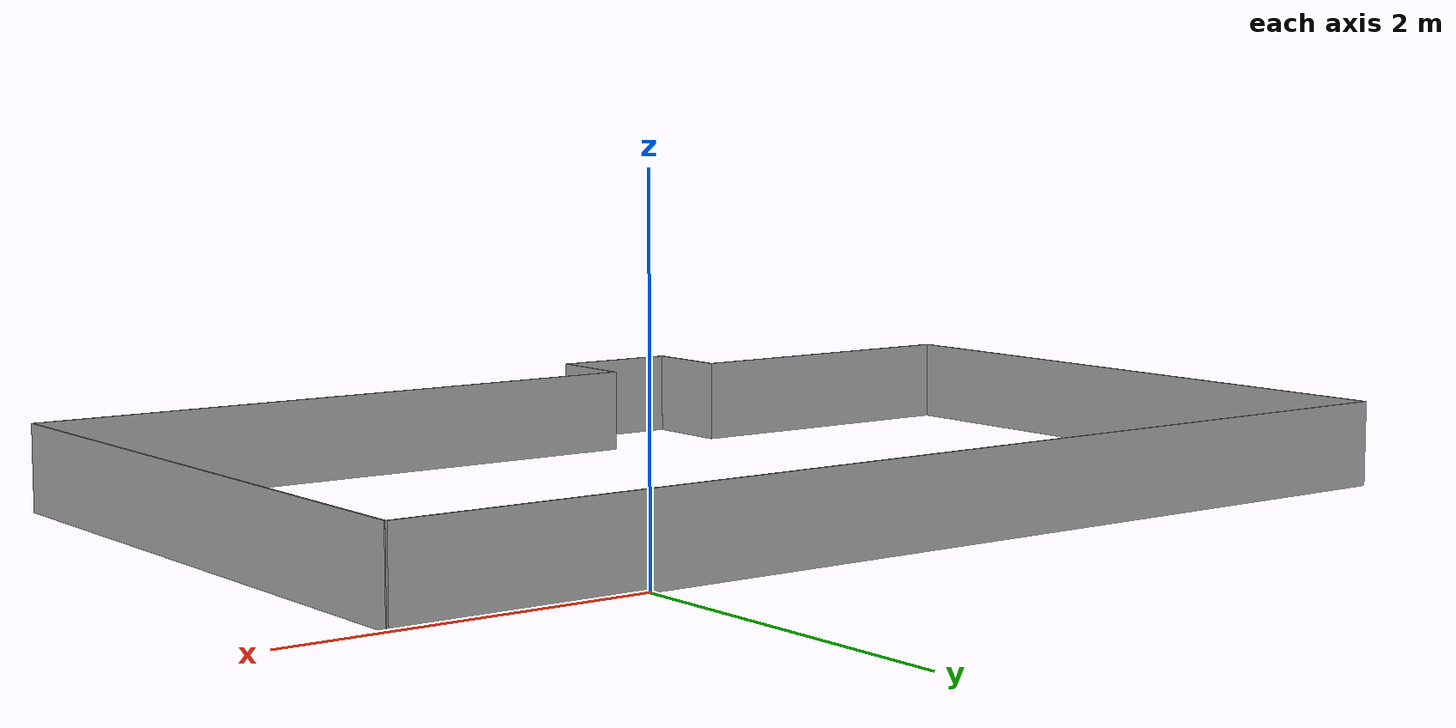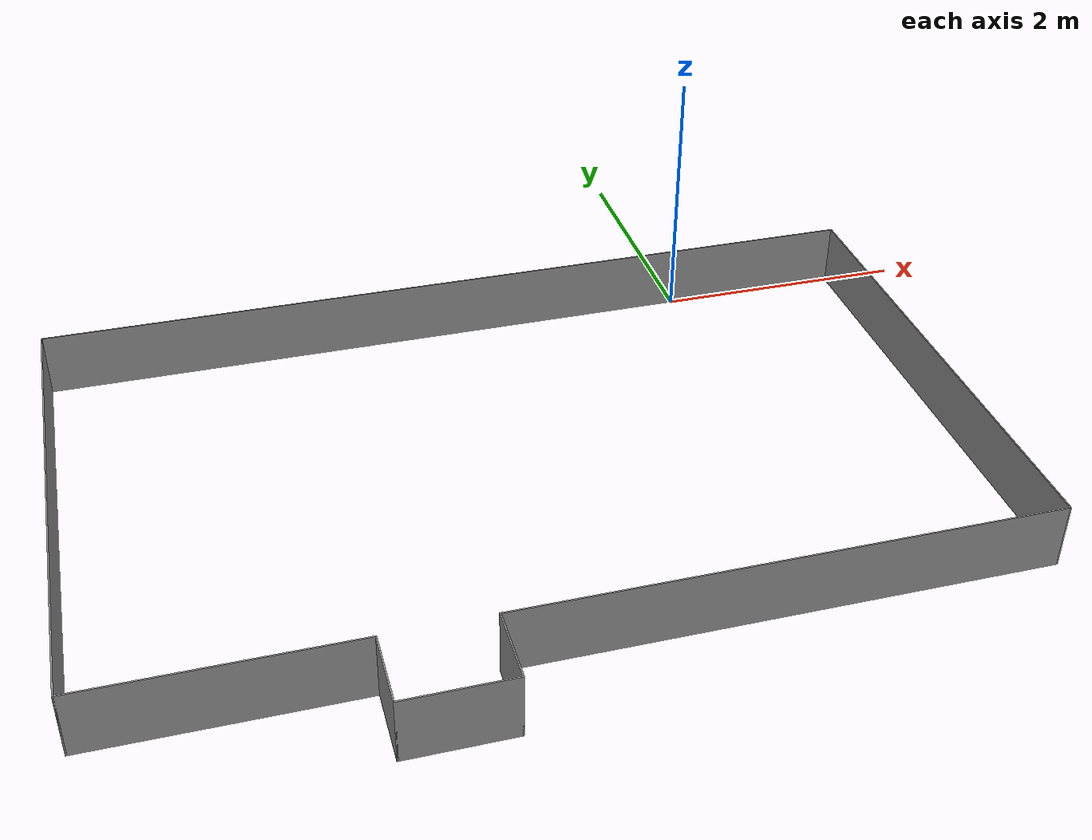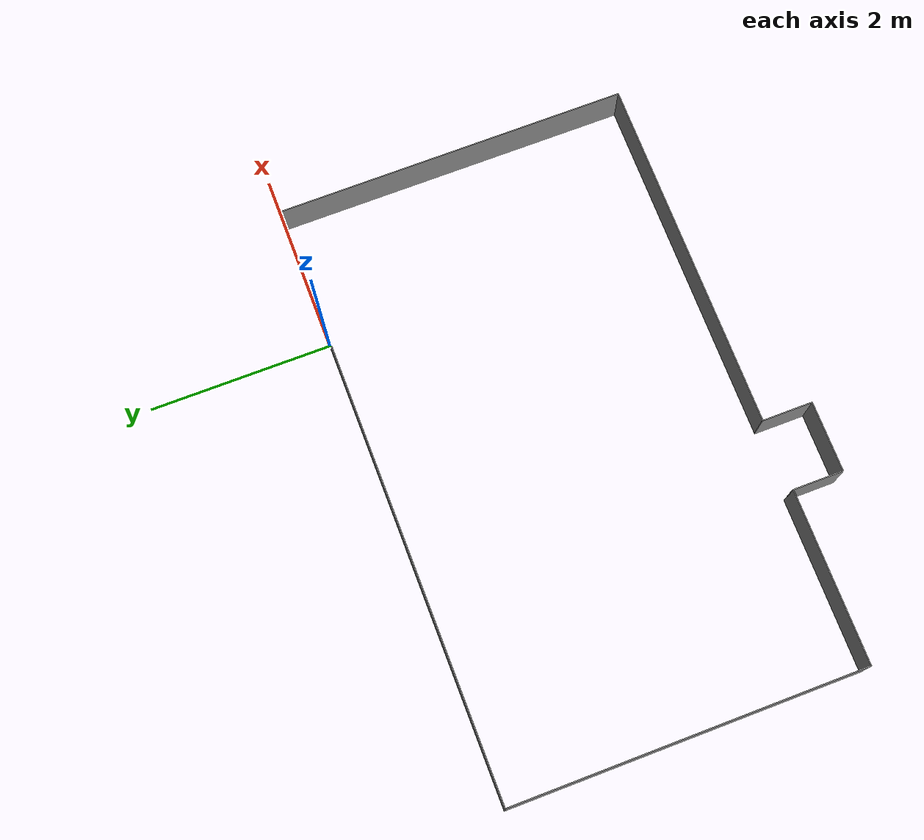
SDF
<?xml version='1.0'?>
<sdf version='1.6'>
  <model name='parallel_parking_space'>
    <pose frame=''>-1.87 -2.2 0 0 -0 0</pose>
    <link name='Wall_0'>
      <collision name='Wall_0_Collision'>
        <geometry>
          <box>
            <size>1.91 0.01 0.5</size>
          </box>
        </geometry>
        <pose frame=''>0 0 0.25 0 -0 0</pose>
      </collision>
      <visual name='Wall_0_Visual'>
        <pose frame=''>0 0 0.25 0 -0 0</pose>
        <geometry>
          <box>
            <size>1.91 0.01 0.5</size>
          </box>
        </geometry>
        <material>
          <script>
            <uri>file://media/materials/scripts/gazebo.material</uri>
            <name>Gazebo/Grey</name>
          </script>
          <ambient>1 1 1 1</ambient>
        </material>
        <meta>
          <layer>0</layer>
        </meta>
      </visual>
      <pose frame=''>-2.35 -1.65 0 0 -0 0</pose>
    </link>
    <link name='Wall_1'>
      <collision name='Wall_1_Collision'>
        <geometry>
          <box>
            <size>0.56 0.01 0.5</size>
          </box>
        </geometry>
        <pose frame=''>0 0 0.25 0 -0 0</pose>
      </collision>
      <visual name='Wall_1_Visual'>
        <pose frame=''>0 0 0.25 0 -0 0</pose>
        <geometry>
          <box>
            <size>0.56 0.01 0.5</size>
          </box>
        </geometry>
        <material>
          <script>
            <uri>file://media/materials/scripts/gazebo.material</uri>
            <name>Gazebo/Grey</name>
          </script>
          <ambient>1 1 1 1</ambient>
        </material>
        <meta>
          <layer>0</layer>
        </meta>
      </visual>
      <pose frame=''>-1.4 -1.925 0 0 -0 -1.5708</pose>
    </link>
    <link name='Wall_2'>
      <collision name='Wall_2_Collision'>
        <geometry>
          <box>
            <size>0.785 0.01 0.5</size>
          </box>
        </geometry>
        <pose frame=''>0 0 0.25 0 -0 0</pose>
      </collision>
      <visual name='Wall_2_Visual'>
        <pose frame=''>0 0 0.25 0 -0 0</pose>
        <geometry>
          <box>
            <size>0.785 0.01 0.5</size>
          </box>
        </geometry>
        <material>
          <script>
            <uri>file://media/materials/scripts/gazebo.material</uri>
            <name>Gazebo/Grey</name>
          </script>
          <ambient>1 1 1 1</ambient>
        </material>
        <meta>
          <layer>0</layer>
        </meta>
      </visual>
      <pose frame=''>-1.0125 -2.2 0 0 -0 0</pose>
    </link>
    <link name='Wall_3'>
      <collision name='Wall_3_Collision'>
        <geometry>
          <box>
            <size>0.56 0.01 0.5</size>
          </box>
        </geometry>
        <pose frame=''>0 0 0.25 0 -0 0</pose>
      </collision>
      <visual name='Wall_3_Visual'>
        <pose frame=''>0 0 0.25 0 -0 0</pose>
        <geometry>
          <box>
            <size>0.56 0.01 0.5</size>
          </box>
        </geometry>
        <material>
          <script>
            <uri>file://media/materials/scripts/gazebo.material</uri>
            <name>Gazebo/Grey</name>
          </script>
          <ambient>1 1 1 1</ambient>
        </material>
        <meta>
          <layer>0</layer>
        </meta>
      </visual>
      <pose frame=''>-0.625 -1.925 0 0 -0 1.5708</pose>
    </link>
    <link name='Wall_4'>
      <collision name='Wall_4_Collision'>
        <geometry>
          <box>
            <size>3.935 0.01 0.5</size>
          </box>
        </geometry>
        <pose frame=''>0 0 0.25 0 -0 0</pose>
      </collision>
      <visual name='Wall_4_Visual'>
        <pose frame=''>0 0 0.25 0 -0 0</pose>
        <geometry>
          <box>
            <size>3.935 0.01 0.5</size>
          </box>
        </geometry>
        <material>
          <script>
            <uri>file://media/materials/scripts/gazebo.material</uri>
            <name>Gazebo/Grey</name>
          </script>
          <ambient>1 1 1 1</ambient>
        </material>
        <meta>
          <layer>0</layer>
        </meta>
      </visual>
      <pose frame=''>1.3375 -1.65 0 0 -0 0</pose>
    </link>
    <link name='Wall_5'>
      <collision name='Wall_5_Collision'>
        <geometry>
          <box>
            <size>3.86 0.01 0.5</size>
          </box>
        </geometry>
        <pose frame=''>0 0 0.25 0 -0 0</pose>
      </collision>
      <visual name='Wall_5_Visual'>
        <pose frame=''>0 0 0.25 0 -0 0</pose>
        <geometry>
          <box>
            <size>3.86 0.01 0.5</size>
          </box>
        </geometry>
        <material>
          <script>
            <uri>file://media/materials/scripts/gazebo.material</uri>
            <name>Gazebo/Grey</name>
          </script>
          <ambient>1 1 1 1</ambient>
        </material>
        <meta>
          <layer>0</layer>
        </meta>
      </visual>
      <pose frame=''>3.3 0.275 0 0 -0 1.5708</pose>
    </link>
    <link name='Wall_6'>
      <collision name='Wall_6_Collision'>
        <geometry>
          <box>
            <size>6.61 0.01 0.5</size>
          </box>
        </geometry>
        <pose frame=''>0 0 0.25 0 -0 0</pose>
      </collision>
      <visual name='Wall_6_Visual'>
        <pose frame=''>0 0 0.25 0 -0 0</pose>
        <geometry>
          <box>
            <size>6.61 0.01 0.5</size>
          </box>
        </geometry>
        <material>
          <script>
            <uri>file://media/materials/scripts/gazebo.material</uri>
            <name>Gazebo/Grey</name>
          </script>
          <ambient>1 1 1 1</ambient>
        </material>
        <meta>
          <layer>0</layer>
        </meta>
      </visual>
      <pose frame=''>0 2.2 0 0 -0 3.14159</pose>
    </link>
    <link name='Wall_7'>
      <collision name='Wall_7_Collision'>
        <geometry>
          <box>
            <size>3.86 0.01 0.5</size>
          </box>
        </geometry>
        <pose frame=''>0 0 0.25 0 -0 0</pose>
      </collision>
      <visual name='Wall_7_Visual'>
        <pose frame=''>0 0 0.25 0 -0 0</pose>
        <geometry>
          <box>
            <size>3.86 0.01 0.5</size>
          </box>
        </geometry>
        <material>
          <script>
            <uri>file://media/materials/scripts/gazebo.material</uri>
            <name>Gazebo/Grey</name>
          </script>
          <ambient>1 1 1 1</ambient>
        </material>
        <meta>
          <layer>0</layer>
        </meta>
      </visual>
      <pose frame=''>-3.3 0.275 0 0 -0 -1.5708</pose>
    </link>
    <static>1</static>
  </model>
</sdf>
